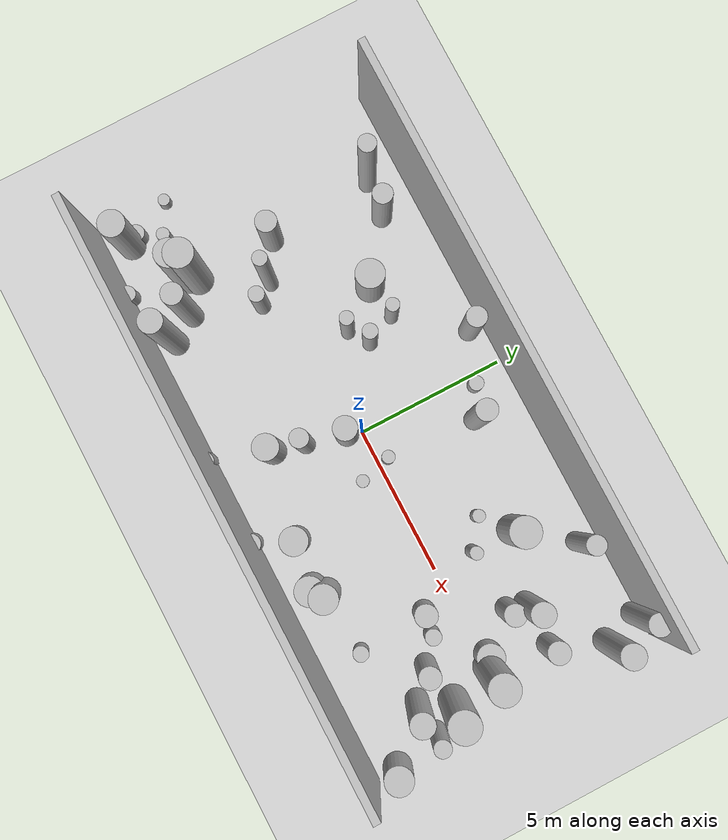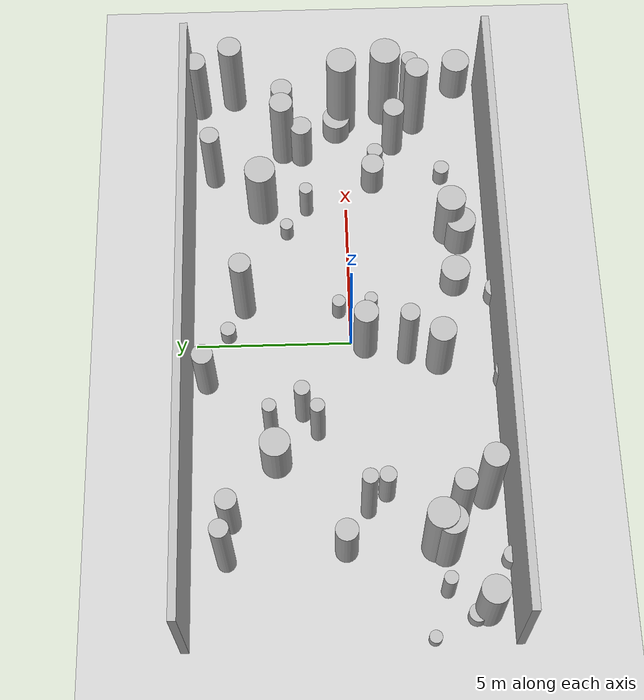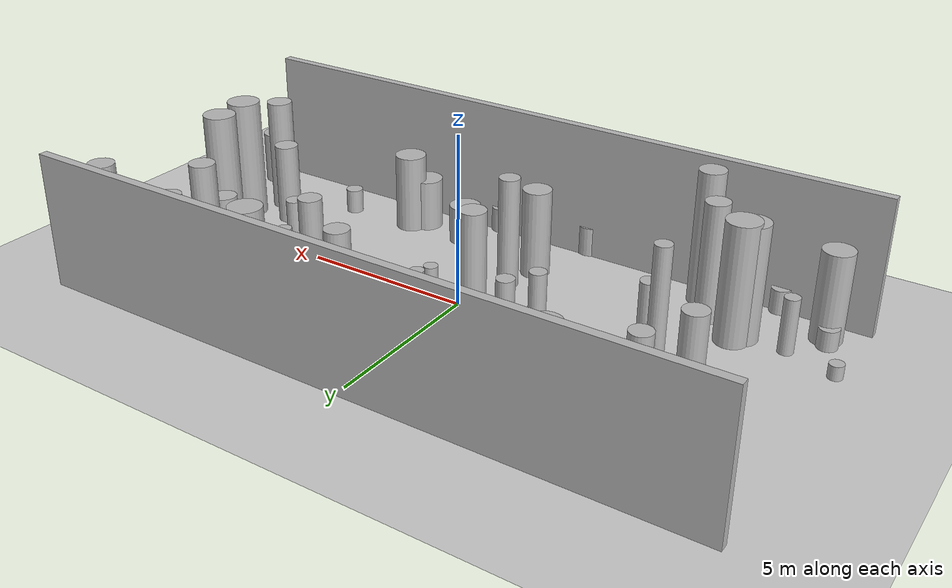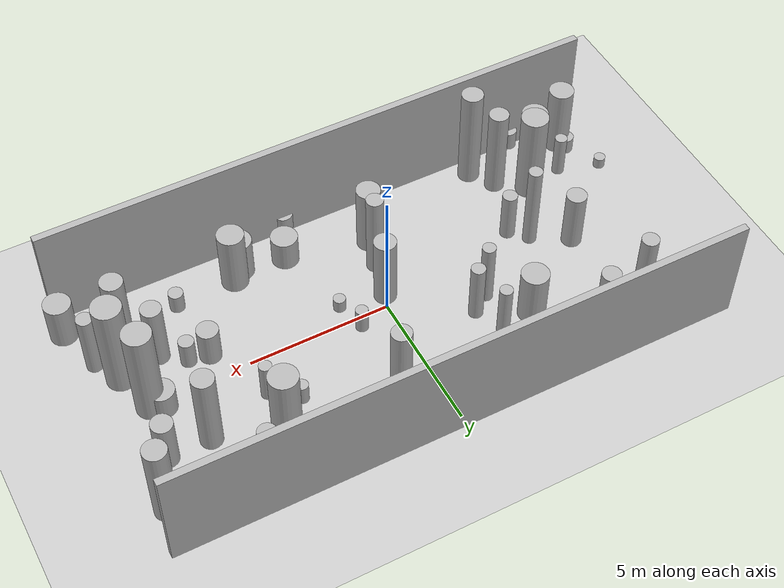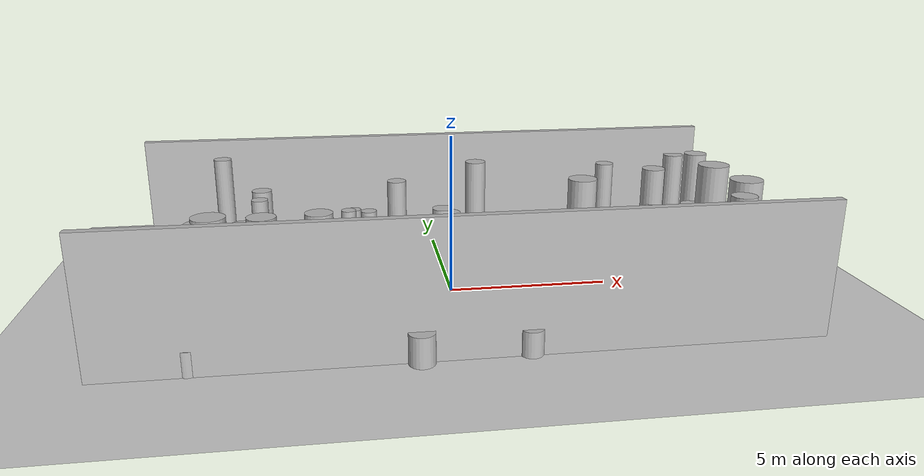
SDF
<?xml version="1.0"?>
<sdf version="1.4">
  <world name="default">
    <gui>
      <camera name="user_camera">
        <pose>-20 -30 40 0 0.66 0.83</pose>
      </camera>
    </gui>
    <include>
      <uri>model://ground_plane</uri>
    </include>
    <include>
      <uri>model://sun</uri>
    </include>
    <scene>
      <shadows>0</shadows>
    </scene>
    <model name="forest">
      <static>true</static>
      <link name="cylinder0">
        <pose>-5.747650275263025 -0.3708181110653115 1.6757862754286832 0 0 0 </pose>
        <visual name="visual">
          <geometry>
            <cylinder>
              <radius>0.24206966135037694</radius>
              <length>3.3515725508573664</length>
            </cylinder>
          </geometry>
        </visual>
        <collision name="collision">
          <geometry>
            <cylinder>
              <radius>0.24206966135037694</radius>
              <length>3.3515725508573664</length>
            </cylinder>
          </geometry>
          <max_contacts>0</max_contacts>
        </collision>
      </link>
      <link name="cylinder1">
        <pose>6.309594600715059 4.45733554956945 1.4390954159693998 0 0 0 </pose>
        <visual name="visual">
          <geometry>
            <cylinder>
              <radius>0.3159176156027637</radius>
              <length>2.8781908319387997</length>
            </cylinder>
          </geometry>
        </visual>
        <collision name="collision">
          <geometry>
            <cylinder>
              <radius>0.3159176156027637</radius>
              <length>2.8781908319387997</length>
            </cylinder>
          </geometry>
          <max_contacts>0</max_contacts>
        </collision>
      </link>
      <link name="cylinder2">
        <pose>0.3335854851793556 3.9670120092869716 0.32559298512226903 0 0 0 </pose>
        <visual name="visual">
          <geometry>
            <cylinder>
              <radius>0.24828351213321254</radius>
              <length>0.6511859702445381</length>
            </cylinder>
          </geometry>
        </visual>
        <collision name="collision">
          <geometry>
            <cylinder>
              <radius>0.24828351213321254</radius>
              <length>0.6511859702445381</length>
            </cylinder>
          </geometry>
          <max_contacts>0</max_contacts>
        </collision>
      </link>
      <link name="cylinder3">
        <pose>-6.962901014880051 -2.417637774828727 1.7486808407736691 0 0 0 </pose>
        <visual name="visual">
          <geometry>
            <cylinder>
              <radius>0.4771879618546487</radius>
              <length>3.4973616815473383</length>
            </cylinder>
          </geometry>
        </visual>
        <collision name="collision">
          <geometry>
            <cylinder>
              <radius>0.4771879618546487</radius>
              <length>3.4973616815473383</length>
            </cylinder>
          </geometry>
          <max_contacts>0</max_contacts>
        </collision>
      </link>
      <link name="cylinder4">
        <pose>8.75566776308862 2.1044147073685524 0.9552209621185515 0 0 0 </pose>
        <visual name="visual">
          <geometry>
            <cylinder>
              <radius>0.36454231266684</radius>
              <length>1.910441924237103</length>
            </cylinder>
          </geometry>
        </visual>
        <collision name="collision">
          <geometry>
            <cylinder>
              <radius>0.36454231266684</radius>
              <length>1.910441924237103</length>
            </cylinder>
          </geometry>
          <max_contacts>0</max_contacts>
        </collision>
      </link>
      <link name="cylinder5">
        <pose>7.135296199732846 1.4621386368922558 1.0202892609991339 0 0 0 </pose>
        <visual name="visual">
          <geometry>
            <cylinder>
              <radius>0.3535644507232323</radius>
              <length>2.0405785219982677</length>
            </cylinder>
          </geometry>
        </visual>
        <collision name="collision">
          <geometry>
            <cylinder>
              <radius>0.3535644507232323</radius>
              <length>2.0405785219982677</length>
            </cylinder>
          </geometry>
          <max_contacts>0</max_contacts>
        </collision>
      </link>
      <link name="cylinder6">
        <pose>-2.480957370683692 1.5910572213093293 1.1411698311849756 0 0 0 </pose>
        <visual name="visual">
          <geometry>
            <cylinder>
              <radius>0.24962980732858678</radius>
              <length>2.2823396623699512</length>
            </cylinder>
          </geometry>
        </visual>
        <collision name="collision">
          <geometry>
            <cylinder>
              <radius>0.24962980732858678</radius>
              <length>2.2823396623699512</length>
            </cylinder>
          </geometry>
          <max_contacts>0</max_contacts>
        </collision>
      </link>
      <link name="cylinder7">
        <pose>8.361909450013684 -2.4295436825210173 1.743337470204572 0 0 0 </pose>
        <visual name="visual">
          <geometry>
            <cylinder>
              <radius>0.3842782737258198</radius>
              <length>3.486674940409144</length>
            </cylinder>
          </geometry>
        </visual>
        <collision name="collision">
          <geometry>
            <cylinder>
              <radius>0.3842782737258198</radius>
              <length>3.486674940409144</length>
            </cylinder>
          </geometry>
          <max_contacts>0</max_contacts>
        </collision>
      </link>
      <link name="cylinder8">
        <pose>1.530235012159336 -4.7663322918011115 0.3778980966568585 0 0 0 </pose>
        <visual name="visual">
          <geometry>
            <cylinder>
              <radius>0.32716612060122696</radius>
              <length>0.755796193313717</length>
            </cylinder>
          </geometry>
        </visual>
        <collision name="collision">
          <geometry>
            <cylinder>
              <radius>0.32716612060122696</radius>
              <length>0.755796193313717</length>
            </cylinder>
          </geometry>
          <max_contacts>0</max_contacts>
        </collision>
      </link>
      <link name="cylinder9">
        <pose>-1.3437580794472037 4.648866477271142 1.2230712019528738 0 0 0 </pose>
        <visual name="visual">
          <geometry>
            <cylinder>
              <radius>0.3359997112161452</radius>
              <length>2.4461424039057476</length>
            </cylinder>
          </geometry>
        </visual>
        <collision name="collision">
          <geometry>
            <cylinder>
              <radius>0.3359997112161452</radius>
              <length>2.4461424039057476</length>
            </cylinder>
          </geometry>
          <max_contacts>0</max_contacts>
        </collision>
      </link>
      <link name="cylinder10">
        <pose>-4.117293723502071 2.4515013760012137 1.0120750924633988 0 0 0 </pose>
        <visual name="visual">
          <geometry>
            <cylinder>
              <radius>0.4780868834974052</radius>
              <length>2.0241501849267975</length>
            </cylinder>
          </geometry>
        </visual>
        <collision name="collision">
          <geometry>
            <cylinder>
              <radius>0.4780868834974052</radius>
              <length>2.0241501849267975</length>
            </cylinder>
          </geometry>
          <max_contacts>0</max_contacts>
        </collision>
      </link>
      <link name="cylinder11">
        <pose>5.015155402353315 1.3439200698222518 0.7621431589517887 0 0 0 </pose>
        <visual name="visual">
          <geometry>
            <cylinder>
              <radius>0.21799380696297396</radius>
              <length>1.5242863179035775</length>
            </cylinder>
          </geometry>
        </visual>
        <collision name="collision">
          <geometry>
            <cylinder>
              <radius>0.21799380696297396</radius>
              <length>1.5242863179035775</length>
            </cylinder>
          </geometry>
          <max_contacts>0</max_contacts>
        </collision>
      </link>
      <link name="cylinder12">
        <pose>-5.4110571475760505 -4.001694670944919 1.9640674762017418 0 0 0 </pose>
        <visual name="visual">
          <geometry>
            <cylinder>
              <radius>0.38332743925808854</radius>
              <length>3.9281349524034836</length>
            </cylinder>
          </geometry>
        </visual>
        <collision name="collision">
          <geometry>
            <cylinder>
              <radius>0.38332743925808854</radius>
              <length>3.9281349524034836</length>
            </cylinder>
          </geometry>
          <max_contacts>0</max_contacts>
        </collision>
      </link>
      <link name="cylinder13">
        <pose>-5.968152743369468 -3.133833608382899 1.7396163705759005 0 0 0 </pose>
        <visual name="visual">
          <geometry>
            <cylinder>
              <radius>0.3478129007863012</radius>
              <length>3.479232741151801</length>
            </cylinder>
          </geometry>
        </visual>
        <collision name="collision">
          <geometry>
            <cylinder>
              <radius>0.3478129007863012</radius>
              <length>3.479232741151801</length>
            </cylinder>
          </geometry>
          <max_contacts>0</max_contacts>
        </collision>
      </link>
      <link name="cylinder14">
        <pose>-7.0061065416193795 0.34482378175876605 1.1268665216332283 0 0 0 </pose>
        <visual name="visual">
          <geometry>
            <cylinder>
              <radius>0.3546123102964728</radius>
              <length>2.2537330432664566</length>
            </cylinder>
          </geometry>
        </visual>
        <collision name="collision">
          <geometry>
            <cylinder>
              <radius>0.3546123102964728</radius>
              <length>2.2537330432664566</length>
            </cylinder>
          </geometry>
          <max_contacts>0</max_contacts>
        </collision>
      </link>
      <link name="cylinder15">
        <pose>2.0820022055246596 -3.4960179116221504 0.5742120173544311 0 0 0 </pose>
        <visual name="visual">
          <geometry>
            <cylinder>
              <radius>0.47245156544263667</radius>
              <length>1.1484240347088621</length>
            </cylinder>
          </geometry>
        </visual>
        <collision name="collision">
          <geometry>
            <cylinder>
              <radius>0.47245156544263667</radius>
              <length>1.1484240347088621</length>
            </cylinder>
          </geometry>
          <max_contacts>0</max_contacts>
        </collision>
      </link>
      <link name="cylinder16">
        <pose>-7.274849777054577 4.011996425858486 1.7934393160654893 0 0 0 </pose>
        <visual name="visual">
          <geometry>
            <cylinder>
              <radius>0.2918184531335164</radius>
              <length>3.5868786321309787</length>
            </cylinder>
          </geometry>
        </visual>
        <collision name="collision">
          <geometry>
            <cylinder>
              <radius>0.2918184531335164</radius>
              <length>3.5868786321309787</length>
            </cylinder>
          </geometry>
          <max_contacts>0</max_contacts>
        </collision>
      </link>
      <link name="cylinder17">
        <pose>-8.349220983713279 -2.678960738623841 0.8078638317566145 0 0 0 </pose>
        <visual name="visual">
          <geometry>
            <cylinder>
              <radius>0.21510465908929635</radius>
              <length>1.615727663513229</length>
            </cylinder>
          </geometry>
        </visual>
        <collision name="collision">
          <geometry>
            <cylinder>
              <radius>0.21510465908929635</radius>
              <length>1.615727663513229</length>
            </cylinder>
          </geometry>
          <max_contacts>0</max_contacts>
        </collision>
      </link>
      <link name="cylinder18">
        <pose>1.410906770544349 -0.7155182107953015 0.24524206610756827 0 0 0 </pose>
        <visual name="visual">
          <geometry>
            <cylinder>
              <radius>0.213361727905638</radius>
              <length>0.49048413221513654</length>
            </cylinder>
          </geometry>
        </visual>
        <collision name="collision">
          <geometry>
            <cylinder>
              <radius>0.213361727905638</radius>
              <length>0.49048413221513654</length>
            </cylinder>
          </geometry>
          <max_contacts>0</max_contacts>
        </collision>
      </link>
      <link name="cylinder19">
        <pose>-0.7851263209662243 -2.8276829437078224 1.3176040083950542 0 0 0 </pose>
        <visual name="visual">
          <geometry>
            <cylinder>
              <radius>0.4214561676685704</radius>
              <length>2.6352080167901084</length>
            </cylinder>
          </geometry>
        </visual>
        <collision name="collision">
          <geometry>
            <cylinder>
              <radius>0.4214561676685704</radius>
              <length>2.6352080167901084</length>
            </cylinder>
          </geometry>
          <max_contacts>0</max_contacts>
        </collision>
      </link>
      <link name="cylinder20">
        <pose>4.10109241900836 2.017348927753181 0.37351778356684684 0 0 0 </pose>
        <visual name="visual">
          <geometry>
            <cylinder>
              <radius>0.2133945208391453</radius>
              <length>0.7470355671336937</length>
            </cylinder>
          </geometry>
        </visual>
        <collision name="collision">
          <geometry>
            <cylinder>
              <radius>0.2133945208391453</radius>
              <length>0.7470355671336937</length>
            </cylinder>
          </geometry>
          <max_contacts>0</max_contacts>
        </collision>
      </link>
      <link name="cylinder21">
        <pose>4.009853991381373 -3.3903522336093417 1.1893492363730633 0 0 0 </pose>
        <visual name="visual">
          <geometry>
            <cylinder>
              <radius>0.4666796659043999</radius>
              <length>2.3786984727461267</length>
            </cylinder>
          </geometry>
        </visual>
        <collision name="collision">
          <geometry>
            <cylinder>
              <radius>0.4666796659043999</radius>
              <length>2.3786984727461267</length>
            </cylinder>
          </geometry>
          <max_contacts>0</max_contacts>
        </collision>
      </link>
      <link name="cylinder22">
        <pose>7.285060287697942 2.0861301069543545 1.6184097859325006 0 0 0 </pose>
        <visual name="visual">
          <geometry>
            <cylinder>
              <radius>0.38134209537493113</radius>
              <length>3.2368195718650012</length>
            </cylinder>
          </geometry>
        </visual>
        <collision name="collision">
          <geometry>
            <cylinder>
              <radius>0.38134209537493113</radius>
              <length>3.2368195718650012</length>
            </cylinder>
          </geometry>
          <max_contacts>0</max_contacts>
        </collision>
      </link>
      <link name="cylinder23">
        <pose>-0.17172800369825225 -0.4659921329357184 1.375550738844266 0 0 0 </pose>
        <visual name="visual">
          <geometry>
            <cylinder>
              <radius>0.38680761295639177</radius>
              <length>2.751101477688532</length>
            </cylinder>
          </geometry>
        </visual>
        <collision name="collision">
          <geometry>
            <cylinder>
              <radius>0.38680761295639177</radius>
              <length>2.751101477688532</length>
            </cylinder>
          </geometry>
          <max_contacts>0</max_contacts>
        </collision>
      </link>
      <link name="cylinder24">
        <pose>1.12357792968918 0.3541074425908324 0.45046868923886596 0 0 0 </pose>
        <visual name="visual">
          <geometry>
            <cylinder>
              <radius>0.21728376198311547</radius>
              <length>0.9009373784777319</length>
            </cylinder>
          </geometry>
        </visual>
        <collision name="collision">
          <geometry>
            <cylinder>
              <radius>0.21728376198311547</radius>
              <length>0.9009373784777319</length>
            </cylinder>
          </geometry>
          <max_contacts>0</max_contacts>
        </collision>
      </link>
      <link name="cylinder25">
        <pose>8.132502239163802 0.25649905561588415 0.47629697035091617 0 0 0 </pose>
        <visual name="visual">
          <geometry>
            <cylinder>
              <radius>0.45647238438578236</radius>
              <length>0.9525939407018323</length>
            </cylinder>
          </geometry>
        </visual>
        <collision name="collision">
          <geometry>
            <cylinder>
              <radius>0.45647238438578236</radius>
              <length>0.9525939407018323</length>
            </cylinder>
          </geometry>
          <max_contacts>0</max_contacts>
        </collision>
      </link>
      <link name="cylinder26">
        <pose>-3.1399165498104775 1.1284416345741475 1.2354333876338157 0 0 0 </pose>
        <visual name="visual">
          <geometry>
            <cylinder>
              <radius>0.231434563472842</radius>
              <length>2.4708667752676314</length>
            </cylinder>
          </geometry>
        </visual>
        <collision name="collision">
          <geometry>
            <cylinder>
              <radius>0.231434563472842</radius>
              <length>2.4708667752676314</length>
            </cylinder>
          </geometry>
          <max_contacts>0</max_contacts>
        </collision>
      </link>
      <link name="cylinder27">
        <pose>9.466017126704596 -2.287869399551632 1.221442141851286 0 0 0 </pose>
        <visual name="visual">
          <geometry>
            <cylinder>
              <radius>0.2789346198773898</radius>
              <length>2.442884283702572</length>
            </cylinder>
          </geometry>
        </visual>
        <collision name="collision">
          <geometry>
            <cylinder>
              <radius>0.2789346198773898</radius>
              <length>2.442884283702572</length>
            </cylinder>
          </geometry>
          <max_contacts>0</max_contacts>
        </collision>
      </link>
      <link name="cylinder28">
        <pose>-9.798380874478141 -2.214376684720861 0.20425199537011587 0 0 0 </pose>
        <visual name="visual">
          <geometry>
            <cylinder>
              <radius>0.20183331242317223</radius>
              <length>0.40850399074023175</length>
            </cylinder>
          </geometry>
        </visual>
        <collision name="collision">
          <geometry>
            <cylinder>
              <radius>0.20183331242317223</radius>
              <length>0.40850399074023175</length>
            </cylinder>
          </geometry>
          <max_contacts>0</max_contacts>
        </collision>
      </link>
      <link name="cylinder29">
        <pose>-1.4550039409063302 -4.918367159029921 0.44459534507707715 0 0 0 </pose>
        <visual name="visual">
          <geometry>
            <cylinder>
              <radius>0.3680681540935168</radius>
              <length>0.8891906901541543</length>
            </cylinder>
          </geometry>
        </visual>
        <collision name="collision">
          <geometry>
            <cylinder>
              <radius>0.3680681540935168</radius>
              <length>0.8891906901541543</length>
            </cylinder>
          </geometry>
          <max_contacts>0</max_contacts>
        </collision>
      </link>
      <link name="cylinder30">
        <pose>-0.49498142397391476 -1.7928866286371372 1.6481105805243152 0 0 0 </pose>
        <visual name="visual">
          <geometry>
            <cylinder>
              <radius>0.300953932992748</radius>
              <length>3.2962211610486305</length>
            </cylinder>
          </geometry>
        </visual>
        <collision name="collision">
          <geometry>
            <cylinder>
              <radius>0.300953932992748</radius>
              <length>3.2962211610486305</length>
            </cylinder>
          </geometry>
          <max_contacts>0</max_contacts>
        </collision>
      </link>
      <link name="cylinder31">
        <pose>6.166608137772954 -3.2782605347977247 0.3707534459505434 0 0 0 </pose>
        <visual name="visual">
          <geometry>
            <cylinder>
              <radius>0.25842200752423156</radius>
              <length>0.7415068919010868</length>
            </cylinder>
          </geometry>
        </visual>
        <collision name="collision">
          <geometry>
            <cylinder>
              <radius>0.25842200752423156</radius>
              <length>0.7415068919010868</length>
            </cylinder>
          </geometry>
          <max_contacts>0</max_contacts>
        </collision>
      </link>
      <link name="cylinder32">
        <pose>6.718282824124866 -1.0308395325133568 0.5312799291155567 0 0 0 </pose>
        <visual name="visual">
          <geometry>
            <cylinder>
              <radius>0.26746111162359454</radius>
              <length>1.0625598582311133</length>
            </cylinder>
          </geometry>
        </visual>
        <collision name="collision">
          <geometry>
            <cylinder>
              <radius>0.26746111162359454</radius>
              <length>1.0625598582311133</length>
            </cylinder>
          </geometry>
          <max_contacts>0</max_contacts>
        </collision>
      </link>
      <link name="cylinder33">
        <pose>7.491210369146344 -1.6604627095523359 1.240673651486334 0 0 0 </pose>
        <visual name="visual">
          <geometry>
            <cylinder>
              <radius>0.3528114983996218</radius>
              <length>2.481347302972668</length>
            </cylinder>
          </geometry>
        </visual>
        <collision name="collision">
          <geometry>
            <cylinder>
              <radius>0.3528114983996218</radius>
              <length>2.481347302972668</length>
            </cylinder>
          </geometry>
          <max_contacts>0</max_contacts>
        </collision>
      </link>
      <link name="cylinder34">
        <pose>-9.004284643085361 -3.8585485588920223 1.3206799469222945 0 0 0 </pose>
        <visual name="visual">
          <geometry>
            <cylinder>
              <radius>0.43916692435631066</radius>
              <length>2.641359893844589</length>
            </cylinder>
          </geometry>
        </visual>
        <collision name="collision">
          <geometry>
            <cylinder>
              <radius>0.43916692435631066</radius>
              <length>2.641359893844589</length>
            </cylinder>
          </geometry>
          <max_contacts>0</max_contacts>
        </collision>
      </link>
      <link name="cylinder35">
        <pose>-7.441715456862905 -4.636625801570192 0.3591340275167124 0 0 0 </pose>
        <visual name="visual">
          <geometry>
            <cylinder>
              <radius>0.2721233588521371</radius>
              <length>0.7182680550334248</length>
            </cylinder>
          </geometry>
        </visual>
        <collision name="collision">
          <geometry>
            <cylinder>
              <radius>0.2721233588521371</radius>
              <length>0.7182680550334248</length>
            </cylinder>
          </geometry>
          <max_contacts>0</max_contacts>
        </collision>
      </link>
      <link name="cylinder36">
        <pose>3.6590142162581802 -3.7334589431835274 0.785089583199168 0 0 0 </pose>
        <visual name="visual">
          <geometry>
            <cylinder>
              <radius>0.4806891534058272</radius>
              <length>1.570179166398336</length>
            </cylinder>
          </geometry>
        </visual>
        <collision name="collision">
          <geometry>
            <cylinder>
              <radius>0.4806891534058272</radius>
              <length>1.570179166398336</length>
            </cylinder>
          </geometry>
          <max_contacts>0</max_contacts>
        </collision>
      </link>
      <link name="cylinder37">
        <pose>9.153524193282848 4.960744190778799 1.499035309800686 0 0 0 </pose>
        <visual name="visual">
          <geometry>
            <cylinder>
              <radius>0.35729610447216975</radius>
              <length>2.998070619601372</length>
            </cylinder>
          </geometry>
        </visual>
        <collision name="collision">
          <geometry>
            <cylinder>
              <radius>0.35729610447216975</radius>
              <length>2.998070619601372</length>
            </cylinder>
          </geometry>
          <max_contacts>0</max_contacts>
        </collision>
      </link>
      <link name="cylinder38">
        <pose>-5.2102634010741316 -0.9556010422420114 0.9529925105070871 0 0 0 </pose>
        <visual name="visual">
          <geometry>
            <cylinder>
              <radius>0.26197259745425755</radius>
              <length>1.9059850210141742</length>
            </cylinder>
          </geometry>
        </visual>
        <collision name="collision">
          <geometry>
            <cylinder>
              <radius>0.26197259745425755</radius>
              <length>1.9059850210141742</length>
            </cylinder>
          </geometry>
          <max_contacts>0</max_contacts>
        </collision>
      </link>
      <link name="cylinder39">
        <pose>6.000770934225052 -0.9184796417401566 0.6794575013152917 0 0 0 </pose>
        <visual name="visual">
          <geometry>
            <cylinder>
              <radius>0.37365944426431674</radius>
              <length>1.3589150026305834</length>
            </cylinder>
          </geometry>
        </visual>
        <collision name="collision">
          <geometry>
            <cylinder>
              <radius>0.37365944426431674</radius>
              <length>1.3589150026305834</length>
            </cylinder>
          </geometry>
          <max_contacts>0</max_contacts>
        </collision>
      </link>
      <link name="cylinder40">
        <pose>9.90503196818721 -3.934976053900161 0.8195294316273194 0 0 0 </pose>
        <visual name="visual">
          <geometry>
            <cylinder>
              <radius>0.46833164155743456</radius>
              <length>1.6390588632546388</length>
            </cylinder>
          </geometry>
        </visual>
        <collision name="collision">
          <geometry>
            <cylinder>
              <radius>0.46833164155743456</radius>
              <length>1.6390588632546388</length>
            </cylinder>
          </geometry>
          <max_contacts>0</max_contacts>
        </collision>
      </link>
      <link name="cylinder41">
        <pose>8.905062722719673 -1.3963921563537065 1.8470421363997465 0 0 0 </pose>
        <visual name="visual">
          <geometry>
            <cylinder>
              <radius>0.49929145378446776</radius>
              <length>3.694084272799493</length>
            </cylinder>
          </geometry>
        </visual>
        <collision name="collision">
          <geometry>
            <cylinder>
              <radius>0.49929145378446776</radius>
              <length>3.694084272799493</length>
            </cylinder>
          </geometry>
          <max_contacts>0</max_contacts>
        </collision>
      </link>
      <link name="cylinder42">
        <pose>5.02428577108172 2.8193707315849004 1.383098222859233 0 0 0 </pose>
        <visual name="visual">
          <geometry>
            <cylinder>
              <radius>0.4984220013915047</radius>
              <length>2.766196445718466</length>
            </cylinder>
          </geometry>
        </visual>
        <collision name="collision">
          <geometry>
            <cylinder>
              <radius>0.4984220013915047</radius>
              <length>2.766196445718466</length>
            </cylinder>
          </geometry>
          <max_contacts>0</max_contacts>
        </collision>
      </link>
      <link name="cylinder43">
        <pose>-6.038510453184605 3.8987857637789567 1.233654103268859 0 0 0 </pose>
        <visual name="visual">
          <geometry>
            <cylinder>
              <radius>0.3339563126592823</radius>
              <length>2.467308206537718</length>
            </cylinder>
          </geometry>
        </visual>
        <collision name="collision">
          <geometry>
            <cylinder>
              <radius>0.3339563126592823</radius>
              <length>2.467308206537718</length>
            </cylinder>
          </geometry>
          <max_contacts>0</max_contacts>
        </collision>
      </link>
      <link name="cylinder44">
        <pose>1.320333293517395 3.4331336806616815 1.6782480083568128 0 0 0 </pose>
        <visual name="visual">
          <geometry>
            <cylinder>
              <radius>0.34622221358317384</radius>
              <length>3.3564960167136255</length>
            </cylinder>
          </geometry>
        </visual>
        <collision name="collision">
          <geometry>
            <cylinder>
              <radius>0.34622221358317384</radius>
              <length>3.3564960167136255</length>
            </cylinder>
          </geometry>
          <max_contacts>0</max_contacts>
        </collision>
      </link>
      <link name="cylinder45">
        <pose>-2.9294972576245826 2.6136373405080207 1.023522244078945 0 0 0 </pose>
        <visual name="visual">
          <geometry>
            <cylinder>
              <radius>0.22507742026294458</radius>
              <length>2.04704448815789</length>
            </cylinder>
          </geometry>
        </visual>
        <collision name="collision">
          <geometry>
            <cylinder>
              <radius>0.22507742026294458</radius>
              <length>2.04704448815789</length>
            </cylinder>
          </geometry>
          <max_contacts>0</max_contacts>
        </collision>
      </link>
      <link name="cylinder46">
        <pose>9.50554873669028 3.7854303418290645 1.64872027980598 0 0 0 </pose>
        <visual name="visual">
          <geometry>
            <cylinder>
              <radius>0.39380686480498284</radius>
              <length>3.29744055961196</length>
            </cylinder>
          </geometry>
        </visual>
        <collision name="collision">
          <geometry>
            <cylinder>
              <radius>0.39380686480498284</radius>
              <length>3.29744055961196</length>
            </cylinder>
          </geometry>
          <max_contacts>0</max_contacts>
        </collision>
      </link>
      <link name="cylinder47">
        <pose>-7.130465465492475 -2.6841541400263513 1.697466443550347 0 0 0 </pose>
        <visual name="visual">
          <geometry>
            <cylinder>
              <radius>0.4572672284309758</radius>
              <length>3.394932887100694</length>
            </cylinder>
          </geometry>
        </visual>
        <collision name="collision">
          <geometry>
            <cylinder>
              <radius>0.4572672284309758</radius>
              <length>3.394932887100694</length>
            </cylinder>
          </geometry>
          <max_contacts>0</max_contacts>
        </collision>
      </link>
      <link name="cylinder48">
        <pose>8.491000628868132 0.0695775657673634 1.9068983374974167 0 0 0 </pose>
        <visual name="visual">
          <geometry>
            <cylinder>
              <radius>0.48496180047486065</radius>
              <length>3.8137966749948333</length>
            </cylinder>
          </geometry>
        </visual>
        <collision name="collision">
          <geometry>
            <cylinder>
              <radius>0.48496180047486065</radius>
              <length>3.8137966749948333</length>
            </cylinder>
          </geometry>
          <max_contacts>0</max_contacts>
        </collision>
      </link>
      <link name="cylinder49">
        <pose>-9.157163387114123 -3.5082457382836454 0.29576993334294077 0 0 0 </pose>
        <visual name="visual">
          <geometry>
            <cylinder>
              <radius>0.2860356046698585</radius>
              <length>0.5915398666858815</length>
            </cylinder>
          </geometry>
        </visual>
        <collision name="collision">
          <geometry>
            <cylinder>
              <radius>0.2860356046698585</radius>
              <length>0.5915398666858815</length>
            </cylinder>
          </geometry>
          <max_contacts>0</max_contacts>
        </collision>
      </link>
      <link name="cube0">
        <pose>0 5.25 2.0 0 0 0 </pose>
        <visual name="visual">
          <geometry>
            <box>
              <size>20 0.25 4.0</size>
            </box>
          </geometry>
        </visual>
        <collision name="collision">
          <geometry>
            <box>
              <size>20 0.25 4.0</size>
            </box>
          </geometry>
          <max_contacts>0</max_contacts>
        </collision>
      </link>
      <link name="cube1">
        <pose>0 -4.75 2.0 0 0 0 </pose>
        <visual name="visual">
          <geometry>
            <box>
              <size>20 0.25 4.0</size>
            </box>
          </geometry>
        </visual>
        <collision name="collision">
          <geometry>
            <box>
              <size>20 0.25 4.0</size>
            </box>
          </geometry>
          <max_contacts>0</max_contacts>
        </collision>
      </link>
    </model>
    <!-- Plugins -->
    <plugin name="gazebo_octomap" filename="librotors_gazebo_octomap_plugin.so"/>
    <plugin name="ros_interface_plugin" filename="librotors_gazebo_ros_interface_plugin.so"/>
    <!-- Physics -->
    <physics name="default_physics" default="0" type="ode">
      <max_step_size>0.004</max_step_size>
      <real_time_factor>1</real_time_factor>
      <real_time_update_rate>250</real_time_update_rate>
      <gravity>0 0 -9.8</gravity>
      <magnetic_field>6e-06 2.3e-05 -4.2e-05</magnetic_field>
      <ode>
        <solver>
          <type>quick</type>
          <iters>1000</iters>
          <sor>1.3</sor>
          <use_dynamic_moi_rescaling>0</use_dynamic_moi_rescaling>
        </solver>
        <constraints>
          <cfm>0</cfm>
          <erp>0.2</erp>
          <contact_max_correcting_vel>100</contact_max_correcting_vel>
          <contact_surface_layer>0.001</contact_surface_layer>
        </constraints>
      </ode>
    </physics>
  </world>
</sdf>
